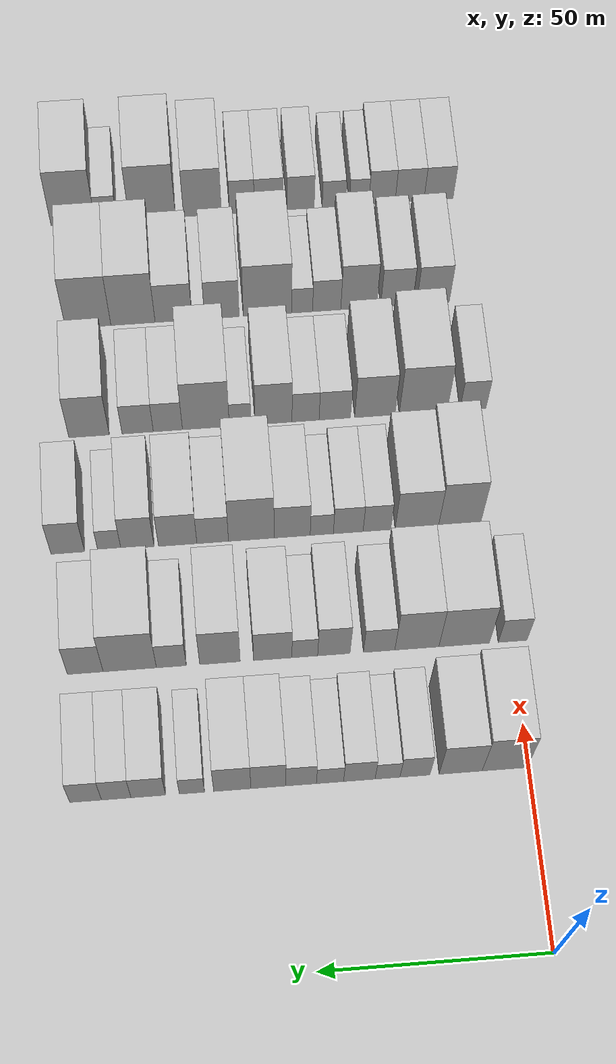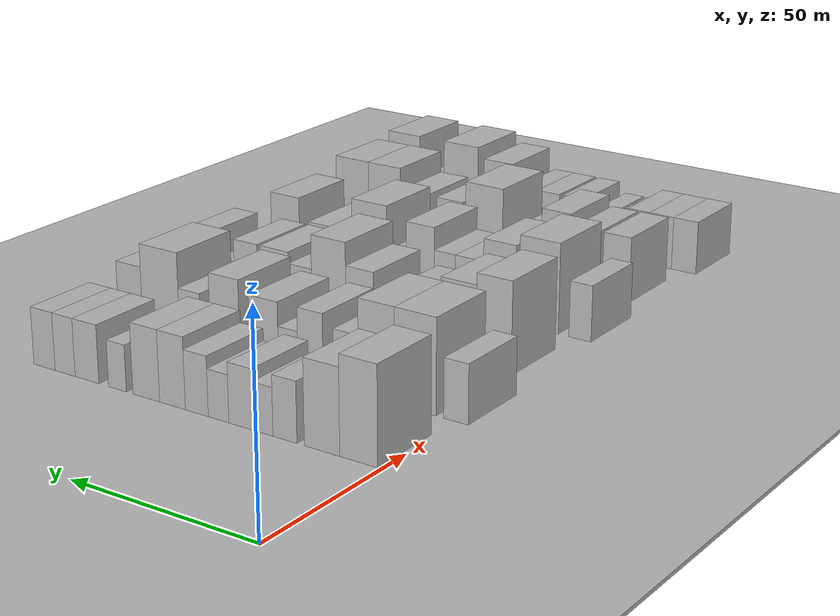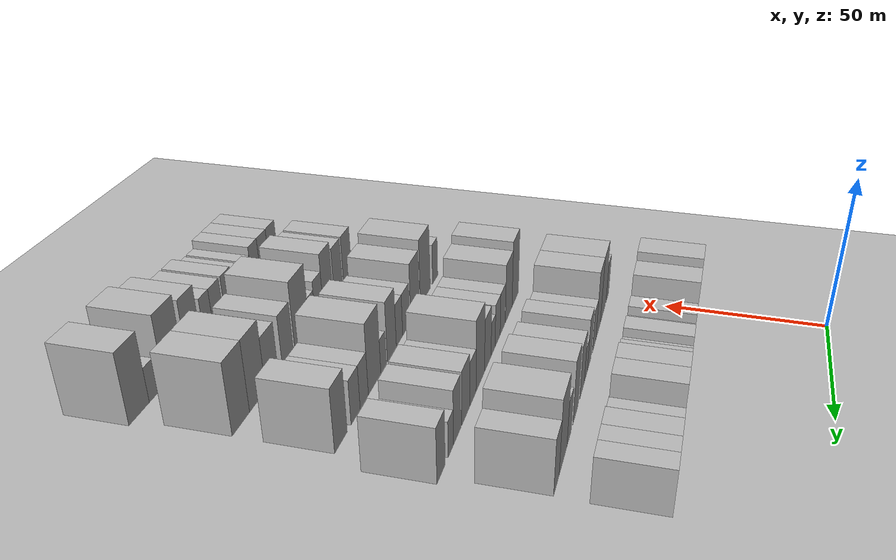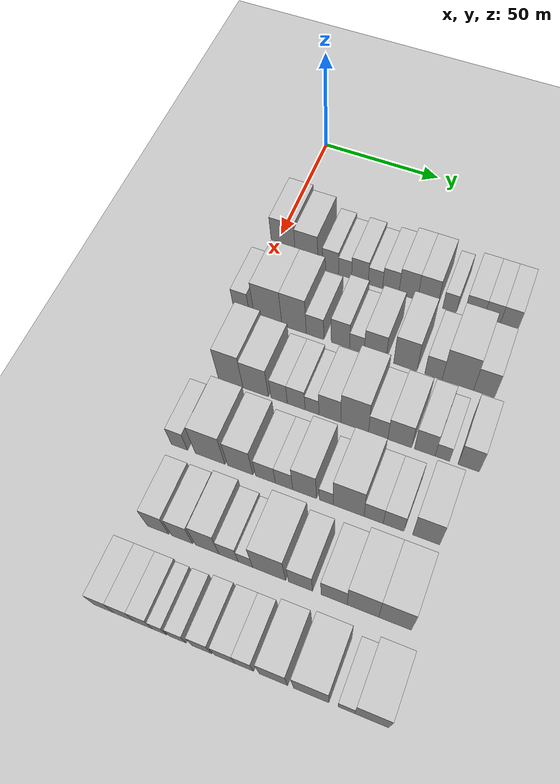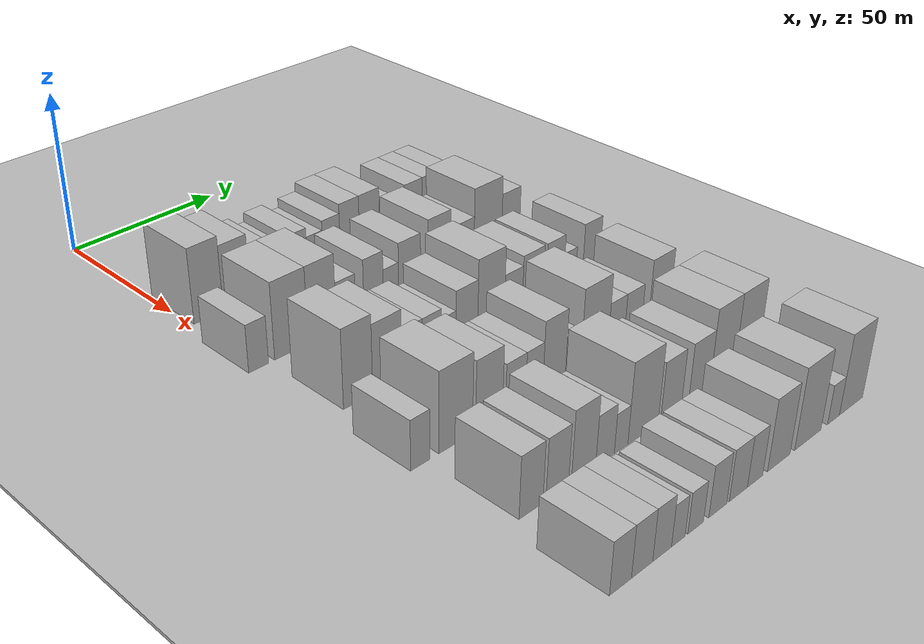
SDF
<sdf version="1.6">
 <world name="default">
  <include><name>ground_plane_1</name><uri>model://HANNAS_ground_plane</uri></include>
  <include>
   <name>ground_plane_2</name>
   <uri>model://HANNAS_ground_plane</uri>
   <pose>100 0 0  0 0 0</pose>
  </include>
  <model name="building_63">
   <static>1</static>
   <pose>50.0000 5.4240 0 0.000000 0.000000 0.000000</pose>
   <link name="link">
    <pose>0 0 12.00 0 0 0</pose>
    <collision name="collision"><geometry><box><size>20.0000 9.8730 24.0000</size></box></geometry></collision>
    <visual name="visual">
     <cast_shadows>0</cast_shadows>
     <geometry><box><size>20.0000 9.8730 24.0000</size></box></geometry>
     <material>
      <script>
       <uri>model://HANNAS_wall/materials/scripts</uri>
       <uri>model://HANNAS_wall/materials/textures</uri>
       <name>vrc/HANNAS_wall</name>
      </script>
     </material>
    </visual>
   </link>
  </model>
  <model name="building_64">
   <static>1</static>
   <pose>50.0000 15.0725 0 0.000000 0.000000 0.000000</pose>
   <link name="link">
    <pose>0 0 10.50 0 0 0</pose>
    <collision name="collision"><geometry><box><size>20.0000 9.4239 21.0000</size></box></geometry></collision>
    <visual name="visual">
     <cast_shadows>0</cast_shadows>
     <geometry><box><size>20.0000 9.4239 21.0000</size></box></geometry>
     <material>
      <script>
       <uri>model://HANNAS_wall/materials/scripts</uri>
       <uri>model://HANNAS_wall/materials/textures</uri>
       <name>vrc/HANNAS_wall</name>
      </script>
     </material>
    </visual>
   </link>
  </model>
  <model name="building_65">
   <static>1</static>
   <pose>50.0000 25.0667 0 0.000000 0.000000 0.000000</pose>
   <link name="link">
    <pose>0 0 7.50 0 0 0</pose>
    <collision name="collision"><geometry><box><size>20.0000 6.5646 15.0000</size></box></geometry></collision>
    <visual name="visual">
     <cast_shadows>0</cast_shadows>
     <geometry><box><size>20.0000 6.5646 15.0000</size></box></geometry>
     <material>
      <script>
       <uri>model://HANNAS_wall/materials/scripts</uri>
       <uri>model://HANNAS_wall/materials/textures</uri>
       <name>vrc/HANNAS_wall</name>
      </script>
     </material>
    </visual>
   </link>
  </model>
  <model name="building_66">
   <static>1</static>
   <pose>50.0000 31.0688 0 0.000000 0.000000 0.000000</pose>
   <link name="link">
    <pose>0 0 6.00 0 0 0</pose>
    <collision name="collision"><geometry><box><size>20.0000 5.4398 12.0000</size></box></geometry></collision>
    <visual name="visual">
     <cast_shadows>0</cast_shadows>
     <geometry><box><size>20.0000 5.4398 12.0000</size></box></geometry>
     <material>
      <script>
       <uri>model://HANNAS_wall/materials/scripts</uri>
       <uri>model://HANNAS_wall/materials/textures</uri>
       <name>vrc/HANNAS_wall</name>
      </script>
     </material>
    </visual>
   </link>
  </model>
  <model name="building_67">
   <static>1</static>
   <pose>50.0000 37.2341 0 0.000000 0.000000 0.000000</pose>
   <link name="link">
    <pose>0 0 7.50 0 0 0</pose>
    <collision name="collision"><geometry><box><size>20.0000 6.8907 15.0000</size></box></geometry></collision>
    <visual name="visual">
     <cast_shadows>0</cast_shadows>
     <geometry><box><size>20.0000 6.8907 15.0000</size></box></geometry>
     <material>
      <script>
       <uri>model://HANNAS_wall/materials/scripts</uri>
       <uri>model://HANNAS_wall/materials/textures</uri>
       <name>vrc/HANNAS_wall</name>
      </script>
     </material>
    </visual>
   </link>
  </model>
  <model name="building_68">
   <static>1</static>
   <pose>50.0000 43.6333 0 0.000000 0.000000 0.000000</pose>
   <link name="link">
    <pose>0 0 6.00 0 0 0</pose>
    <collision name="collision"><geometry><box><size>20.0000 5.9078 12.0000</size></box></geometry></collision>
    <visual name="visual">
     <cast_shadows>0</cast_shadows>
     <geometry><box><size>20.0000 5.9078 12.0000</size></box></geometry>
     <material>
      <script>
       <uri>model://HANNAS_wall/materials/scripts</uri>
       <uri>model://HANNAS_wall/materials/textures</uri>
       <name>vrc/HANNAS_wall</name>
      </script>
     </material>
    </visual>
   </link>
  </model>
  <model name="building_69">
   <static>1</static>
   <pose>50.0000 49.9185 0 0.000000 0.000000 0.000000</pose>
   <link name="link">
    <pose>0 0 7.50 0 0 0</pose>
    <collision name="collision"><geometry><box><size>20.0000 6.6625 15.0000</size></box></geometry></collision>
    <visual name="visual">
     <cast_shadows>0</cast_shadows>
     <geometry><box><size>20.0000 6.6625 15.0000</size></box></geometry>
     <material>
      <script>
       <uri>model://HANNAS_wall/materials/scripts</uri>
       <uri>model://HANNAS_wall/materials/textures</uri>
       <name>vrc/HANNAS_wall</name>
      </script>
     </material>
    </visual>
   </link>
  </model>
  <model name="building_70">
   <static>1</static>
   <pose>50.0000 57.0502 0 0.000000 0.000000 0.000000</pose>
   <link name="link">
    <pose>0 0 9.00 0 0 0</pose>
    <collision name="collision"><geometry><box><size>20.0000 7.6008 18.0000</size></box></geometry></collision>
    <visual name="visual">
     <cast_shadows>0</cast_shadows>
     <geometry><box><size>20.0000 7.6008 18.0000</size></box></geometry>
     <material>
      <script>
       <uri>model://HANNAS_wall/materials/scripts</uri>
       <uri>model://HANNAS_wall/materials/textures</uri>
       <name>vrc/HANNAS_wall</name>
      </script>
     </material>
    </visual>
   </link>
  </model>
  <model name="building_71">
   <static>1</static>
   <pose>50.0000 64.8826 0 0.000000 0.000000 0.000000</pose>
   <link name="link">
    <pose>0 0 9.00 0 0 0</pose>
    <collision name="collision"><geometry><box><size>20.0000 8.0640 18.0000</size></box></geometry></collision>
    <visual name="visual">
     <cast_shadows>0</cast_shadows>
     <geometry><box><size>20.0000 8.0640 18.0000</size></box></geometry>
     <material>
      <script>
       <uri>model://HANNAS_wall/materials/scripts</uri>
       <uri>model://HANNAS_wall/materials/textures</uri>
       <name>vrc/HANNAS_wall</name>
      </script>
     </material>
    </visual>
   </link>
  </model>
  <model name="building_72">
   <static>1</static>
   <pose>50.0000 73.6404 0 0.000000 0.000000 0.000000</pose>
   <link name="link">
    <pose>0 0 6.00 0 0 0</pose>
    <collision name="collision"><geometry><box><size>20.0000 5.4518 12.0000</size></box></geometry></collision>
    <visual name="visual">
     <cast_shadows>0</cast_shadows>
     <geometry><box><size>20.0000 5.4518 12.0000</size></box></geometry>
     <material>
      <script>
       <uri>model://HANNAS_wall/materials/scripts</uri>
       <uri>model://HANNAS_wall/materials/textures</uri>
       <name>vrc/HANNAS_wall</name>
      </script>
     </material>
    </visual>
   </link>
  </model>
  <model name="building_73">
   <static>1</static>
   <pose>50.0000 83.1149 0 0.000000 0.000000 0.000000</pose>
   <link name="link">
    <pose>0 0 7.50 0 0 0</pose>
    <collision name="collision"><geometry><box><size>20.0000 7.4973 15.0000</size></box></geometry></collision>
    <visual name="visual">
     <cast_shadows>0</cast_shadows>
     <geometry><box><size>20.0000 7.4973 15.0000</size></box></geometry>
     <material>
      <script>
       <uri>model://HANNAS_wall/materials/scripts</uri>
       <uri>model://HANNAS_wall/materials/textures</uri>
       <name>vrc/HANNAS_wall</name>
      </script>
     </material>
    </visual>
   </link>
  </model>
  <model name="building_74">
   <static>1</static>
   <pose>50.0000 90.0583 0 0.000000 0.000000 0.000000</pose>
   <link name="link">
    <pose>0 0 7.50 0 0 0</pose>
    <collision name="collision"><geometry><box><size>20.0000 6.3895 15.0000</size></box></geometry></collision>
    <visual name="visual">
     <cast_shadows>0</cast_shadows>
     <geometry><box><size>20.0000 6.3895 15.0000</size></box></geometry>
     <material>
      <script>
       <uri>model://HANNAS_wall/materials/scripts</uri>
       <uri>model://HANNAS_wall/materials/textures</uri>
       <name>vrc/HANNAS_wall</name>
      </script>
     </material>
    </visual>
   </link>
  </model>
  <model name="building_75">
   <static>1</static>
   <pose>50.0000 96.6844 0 0.000000 0.000000 0.000000</pose>
   <link name="link">
    <pose>0 0 7.50 0 0 0</pose>
    <collision name="collision"><geometry><box><size>20.0000 6.8627 15.0000</size></box></geometry></collision>
    <visual name="visual">
     <cast_shadows>0</cast_shadows>
     <geometry><box><size>20.0000 6.8627 15.0000</size></box></geometry>
     <material>
      <script>
       <uri>model://HANNAS_wall/materials/scripts</uri>
       <uri>model://HANNAS_wall/materials/textures</uri>
       <name>vrc/HANNAS_wall</name>
      </script>
     </material>
    </visual>
   </link>
  </model>
  <model name="building_182">
   <static>1</static>
   <pose>79.0000 -0.0189 0 0.000000 0.000000 0.000000</pose>
   <link name="link">
    <pose>0 0 7.50 0 0 0</pose>
    <collision name="collision"><geometry><box><size>20.0000 6.5021 15.0000</size></box></geometry></collision>
    <visual name="visual">
     <cast_shadows>0</cast_shadows>
     <geometry><box><size>20.0000 6.5021 15.0000</size></box></geometry>
     <material>
      <script>
       <uri>model://HANNAS_wall/materials/scripts</uri>
       <uri>model://HANNAS_wall/materials/textures</uri>
       <name>vrc/HANNAS_wall</name>
      </script>
     </material>
    </visual>
   </link>
  </model>
  <model name="building_183">
   <static>1</static>
   <pose>79.0000 10.9046 0 0.000000 0.000000 0.000000</pose>
   <link name="link">
    <pose>0 0 12.00 0 0 0</pose>
    <collision name="collision"><geometry><box><size>20.0000 11.3450 24.0000</size></box></geometry></collision>
    <visual name="visual">
     <cast_shadows>0</cast_shadows>
     <geometry><box><size>20.0000 11.3450 24.0000</size></box></geometry>
     <material>
      <script>
       <uri>model://HANNAS_wall/materials/scripts</uri>
       <uri>model://HANNAS_wall/materials/textures</uri>
       <name>vrc/HANNAS_wall</name>
      </script>
     </material>
    </visual>
   </link>
  </model>
  <model name="building_184">
   <static>1</static>
   <pose>79.0000 21.5373 0 0.000000 0.000000 0.000000</pose>
   <link name="link">
    <pose>0 0 12.00 0 0 0</pose>
    <collision name="collision"><geometry><box><size>20.0000 9.9205 24.0000</size></box></geometry></collision>
    <visual name="visual">
     <cast_shadows>0</cast_shadows>
     <geometry><box><size>20.0000 9.9205 24.0000</size></box></geometry>
     <material>
      <script>
       <uri>model://HANNAS_wall/materials/scripts</uri>
       <uri>model://HANNAS_wall/materials/textures</uri>
       <name>vrc/HANNAS_wall</name>
      </script>
     </material>
    </visual>
   </link>
  </model>
  <model name="building_185">
   <static>1</static>
   <pose>79.0000 30.0246 0 0.000000 0.000000 0.000000</pose>
   <link name="link">
    <pose>0 0 7.50 0 0 0</pose>
    <collision name="collision"><geometry><box><size>20.0000 7.0541 15.0000</size></box></geometry></collision>
    <visual name="visual">
     <cast_shadows>0</cast_shadows>
     <geometry><box><size>20.0000 7.0541 15.0000</size></box></geometry>
     <material>
      <script>
       <uri>model://HANNAS_wall/materials/scripts</uri>
       <uri>model://HANNAS_wall/materials/textures</uri>
       <name>vrc/HANNAS_wall</name>
      </script>
     </material>
    </visual>
   </link>
  </model>
  <model name="building_186">
   <static>1</static>
   <pose>79.0000 40.1799 0 0.000000 0.000000 0.000000</pose>
   <link name="link">
    <pose>0 0 9.00 0 0 0</pose>
    <collision name="collision"><geometry><box><size>20.0000 7.2566 18.0000</size></box></geometry></collision>
    <visual name="visual">
     <cast_shadows>0</cast_shadows>
     <geometry><box><size>20.0000 7.2566 18.0000</size></box></geometry>
     <material>
      <script>
       <uri>model://HANNAS_wall/materials/scripts</uri>
       <uri>model://HANNAS_wall/materials/textures</uri>
       <name>vrc/HANNAS_wall</name>
      </script>
     </material>
    </visual>
   </link>
  </model>
  <model name="building_187">
   <static>1</static>
   <pose>79.0000 46.6966 0 0.000000 0.000000 0.000000</pose>
   <link name="link">
    <pose>0 0 6.00 0 0 0</pose>
    <collision name="collision"><geometry><box><size>20.0000 5.7768 12.0000</size></box></geometry></collision>
    <visual name="visual">
     <cast_shadows>0</cast_shadows>
     <geometry><box><size>20.0000 5.7768 12.0000</size></box></geometry>
     <material>
      <script>
       <uri>model://HANNAS_wall/materials/scripts</uri>
       <uri>model://HANNAS_wall/materials/textures</uri>
       <name>vrc/HANNAS_wall</name>
      </script>
     </material>
    </visual>
   </link>
  </model>
  <model name="building_188">
   <static>1</static>
   <pose>79.0000 53.8632 0 0.000000 0.000000 0.000000</pose>
   <link name="link">
    <pose>0 0 9.00 0 0 0</pose>
    <collision name="collision"><geometry><box><size>20.0000 8.5563 18.0000</size></box></geometry></collision>
    <visual name="visual">
     <cast_shadows>0</cast_shadows>
     <geometry><box><size>20.0000 8.5563 18.0000</size></box></geometry>
     <material>
      <script>
       <uri>model://HANNAS_wall/materials/scripts</uri>
       <uri>model://HANNAS_wall/materials/textures</uri>
       <name>vrc/HANNAS_wall</name>
      </script>
     </material>
    </visual>
   </link>
  </model>
  <model name="building_189">
   <static>1</static>
   <pose>79.0000 65.6581 0 0.000000 0.000000 0.000000</pose>
   <link name="link">
    <pose>0 0 10.50 0 0 0</pose>
    <collision name="collision"><geometry><box><size>20.0000 9.0336 21.0000</size></box></geometry></collision>
    <visual name="visual">
     <cast_shadows>0</cast_shadows>
     <geometry><box><size>20.0000 9.0336 21.0000</size></box></geometry>
     <material>
      <script>
       <uri>model://HANNAS_wall/materials/scripts</uri>
       <uri>model://HANNAS_wall/materials/textures</uri>
       <name>vrc/HANNAS_wall</name>
      </script>
     </material>
    </visual>
   </link>
  </model>
  <model name="building_190">
   <static>1</static>
   <pose>79.0000 76.5094 0 0.000000 0.000000 0.000000</pose>
   <link name="link">
    <pose>0 0 7.50 0 0 0</pose>
    <collision name="collision"><geometry><box><size>20.0000 6.6690 15.0000</size></box></geometry></collision>
    <visual name="visual">
     <cast_shadows>0</cast_shadows>
     <geometry><box><size>20.0000 6.6690 15.0000</size></box></geometry>
     <material>
      <script>
       <uri>model://HANNAS_wall/materials/scripts</uri>
       <uri>model://HANNAS_wall/materials/textures</uri>
       <name>vrc/HANNAS_wall</name>
      </script>
     </material>
    </visual>
   </link>
  </model>
  <model name="building_191">
   <static>1</static>
   <pose>79.0000 85.7772 0 0.000000 0.000000 0.000000</pose>
   <link name="link">
    <pose>0 0 12.00 0 0 0</pose>
    <collision name="collision"><geometry><box><size>20.0000 11.8665 24.0000</size></box></geometry></collision>
    <visual name="visual">
     <cast_shadows>0</cast_shadows>
     <geometry><box><size>20.0000 11.8665 24.0000</size></box></geometry>
     <material>
      <script>
       <uri>model://HANNAS_wall/materials/scripts</uri>
       <uri>model://HANNAS_wall/materials/textures</uri>
       <name>vrc/HANNAS_wall</name>
      </script>
     </material>
    </visual>
   </link>
  </model>
  <model name="building_192">
   <static>1</static>
   <pose>79.0000 95.6790 0 0.000000 0.000000 0.000000</pose>
   <link name="link">
    <pose>0 0 9.00 0 0 0</pose>
    <collision name="collision"><geometry><box><size>20.0000 7.9371 18.0000</size></box></geometry></collision>
    <visual name="visual">
     <cast_shadows>0</cast_shadows>
     <geometry><box><size>20.0000 7.9371 18.0000</size></box></geometry>
     <material>
      <script>
       <uri>model://HANNAS_wall/materials/scripts</uri>
       <uri>model://HANNAS_wall/materials/textures</uri>
       <name>vrc/HANNAS_wall</name>
      </script>
     </material>
    </visual>
   </link>
  </model>
  <model name="building_292">
   <static>1</static>
   <pose>108.0000 8.5691 0 0.000000 0.000000 0.000000</pose>
   <link name="link">
    <pose>0 0 12.00 0 0 0</pose>
    <collision name="collision"><geometry><box><size>20.0000 9.7496 24.0000</size></box></geometry></collision>
    <visual name="visual">
     <cast_shadows>0</cast_shadows>
     <geometry><box><size>20.0000 9.7496 24.0000</size></box></geometry>
     <material>
      <script>
       <uri>model://HANNAS_wall/materials/scripts</uri>
       <uri>model://HANNAS_wall/materials/textures</uri>
       <name>vrc/HANNAS_wall</name>
      </script>
     </material>
    </visual>
   </link>
  </model>
  <model name="building_293">
   <static>1</static>
   <pose>108.0000 18.4578 0 0.000000 0.000000 0.000000</pose>
   <link name="link">
    <pose>0 0 10.50 0 0 0</pose>
    <collision name="collision"><geometry><box><size>20.0000 10.0279 21.0000</size></box></geometry></collision>
    <visual name="visual">
     <cast_shadows>0</cast_shadows>
     <geometry><box><size>20.0000 10.0279 21.0000</size></box></geometry>
     <material>
      <script>
       <uri>model://HANNAS_wall/materials/scripts</uri>
       <uri>model://HANNAS_wall/materials/textures</uri>
       <name>vrc/HANNAS_wall</name>
      </script>
     </material>
    </visual>
   </link>
  </model>
  <model name="building_294">
   <static>1</static>
   <pose>108.0000 27.6638 0 0.000000 0.000000 0.000000</pose>
   <link name="link">
    <pose>0 0 7.50 0 0 0</pose>
    <collision name="collision"><geometry><box><size>20.0000 6.3840 15.0000</size></box></geometry></collision>
    <visual name="visual">
     <cast_shadows>0</cast_shadows>
     <geometry><box><size>20.0000 6.3840 15.0000</size></box></geometry>
     <material>
      <script>
       <uri>model://HANNAS_wall/materials/scripts</uri>
       <uri>model://HANNAS_wall/materials/textures</uri>
       <name>vrc/HANNAS_wall</name>
      </script>
     </material>
    </visual>
   </link>
  </model>
  <model name="building_295">
   <static>1</static>
   <pose>108.0000 34.2830 0 0.000000 0.000000 0.000000</pose>
   <link name="link">
    <pose>0 0 7.50 0 0 0</pose>
    <collision name="collision"><geometry><box><size>20.0000 6.8545 15.0000</size></box></geometry></collision>
    <visual name="visual">
     <cast_shadows>0</cast_shadows>
     <geometry><box><size>20.0000 6.8545 15.0000</size></box></geometry>
     <material>
      <script>
       <uri>model://HANNAS_wall/materials/scripts</uri>
       <uri>model://HANNAS_wall/materials/textures</uri>
       <name>vrc/HANNAS_wall</name>
      </script>
     </material>
    </visual>
   </link>
  </model>
  <model name="building_296">
   <static>1</static>
   <pose>108.0000 40.3734 0 0.000000 0.000000 0.000000</pose>
   <link name="link">
    <pose>0 0 6.00 0 0 0</pose>
    <collision name="collision"><geometry><box><size>20.0000 5.3262 12.0000</size></box></geometry></collision>
    <visual name="visual">
     <cast_shadows>0</cast_shadows>
     <geometry><box><size>20.0000 5.3262 12.0000</size></box></geometry>
     <material>
      <script>
       <uri>model://HANNAS_wall/materials/scripts</uri>
       <uri>model://HANNAS_wall/materials/textures</uri>
       <name>vrc/HANNAS_wall</name>
      </script>
     </material>
    </visual>
   </link>
  </model>
  <model name="building_297">
   <static>1</static>
   <pose>108.0000 47.1893 0 0.000000 0.000000 0.000000</pose>
   <link name="link">
    <pose>0 0 9.00 0 0 0</pose>
    <collision name="collision"><geometry><box><size>20.0000 8.3055 18.0000</size></box></geometry></collision>
    <visual name="visual">
     <cast_shadows>0</cast_shadows>
     <geometry><box><size>20.0000 8.3055 18.0000</size></box></geometry>
     <material>
      <script>
       <uri>model://HANNAS_wall/materials/scripts</uri>
       <uri>model://HANNAS_wall/materials/textures</uri>
       <name>vrc/HANNAS_wall</name>
      </script>
     </material>
    </visual>
   </link>
  </model>
  <model name="building_298">
   <static>1</static>
   <pose>108.0000 56.5709 0 0.000000 0.000000 0.000000</pose>
   <link name="link">
    <pose>0 0 12.00 0 0 0</pose>
    <collision name="collision"><geometry><box><size>20.0000 10.4578 24.0000</size></box></geometry></collision>
    <visual name="visual">
     <cast_shadows>0</cast_shadows>
     <geometry><box><size>20.0000 10.4578 24.0000</size></box></geometry>
     <material>
      <script>
       <uri>model://HANNAS_wall/materials/scripts</uri>
       <uri>model://HANNAS_wall/materials/textures</uri>
       <name>vrc/HANNAS_wall</name>
      </script>
     </material>
    </visual>
   </link>
  </model>
  <model name="building_299">
   <static>1</static>
   <pose>108.0000 65.4216 0 0.000000 0.000000 0.000000</pose>
   <link name="link">
    <pose>0 0 7.50 0 0 0</pose>
    <collision name="collision"><geometry><box><size>20.0000 7.2435 15.0000</size></box></geometry></collision>
    <visual name="visual">
     <cast_shadows>0</cast_shadows>
     <geometry><box><size>20.0000 7.2435 15.0000</size></box></geometry>
     <material>
      <script>
       <uri>model://HANNAS_wall/materials/scripts</uri>
       <uri>model://HANNAS_wall/materials/textures</uri>
       <name>vrc/HANNAS_wall</name>
      </script>
     </material>
    </visual>
   </link>
  </model>
  <model name="building_300">
   <static>1</static>
   <pose>108.0000 73.4428 0 0.000000 0.000000 0.000000</pose>
   <link name="link">
    <pose>0 0 9.00 0 0 0</pose>
    <collision name="collision"><geometry><box><size>20.0000 8.7989 18.0000</size></box></geometry></collision>
    <visual name="visual">
     <cast_shadows>0</cast_shadows>
     <geometry><box><size>20.0000 8.7989 18.0000</size></box></geometry>
     <material>
      <script>
       <uri>model://HANNAS_wall/materials/scripts</uri>
       <uri>model://HANNAS_wall/materials/textures</uri>
       <name>vrc/HANNAS_wall</name>
      </script>
     </material>
    </visual>
   </link>
  </model>
  <model name="building_301">
   <static>1</static>
   <pose>108.0000 82.6380 0 0.000000 0.000000 0.000000</pose>
   <link name="link">
    <pose>0 0 9.00 0 0 0</pose>
    <collision name="collision"><geometry><box><size>20.0000 7.5915 18.0000</size></box></geometry></collision>
    <visual name="visual">
     <cast_shadows>0</cast_shadows>
     <geometry><box><size>20.0000 7.5915 18.0000</size></box></geometry>
     <material>
      <script>
       <uri>model://HANNAS_wall/materials/scripts</uri>
       <uri>model://HANNAS_wall/materials/textures</uri>
       <name>vrc/HANNAS_wall</name>
      </script>
     </material>
    </visual>
   </link>
  </model>
  <model name="building_302">
   <static>1</static>
   <pose>108.0000 89.0787 0 0.000000 0.000000 0.000000</pose>
   <link name="link">
    <pose>0 0 6.00 0 0 0</pose>
    <collision name="collision"><geometry><box><size>20.0000 5.2900 12.0000</size></box></geometry></collision>
    <visual name="visual">
     <cast_shadows>0</cast_shadows>
     <geometry><box><size>20.0000 5.2900 12.0000</size></box></geometry>
     <material>
      <script>
       <uri>model://HANNAS_wall/materials/scripts</uri>
       <uri>model://HANNAS_wall/materials/textures</uri>
       <name>vrc/HANNAS_wall</name>
      </script>
     </material>
    </visual>
   </link>
  </model>
  <model name="building_303">
   <static>1</static>
   <pose>108.0000 98.5750 0 0.000000 0.000000 0.000000</pose>
   <link name="link">
    <pose>0 0 9.00 0 0 0</pose>
    <collision name="collision"><geometry><box><size>20.0000 7.7025 18.0000</size></box></geometry></collision>
    <visual name="visual">
     <cast_shadows>0</cast_shadows>
     <geometry><box><size>20.0000 7.7025 18.0000</size></box></geometry>
     <material>
      <script>
       <uri>model://HANNAS_wall/materials/scripts</uri>
       <uri>model://HANNAS_wall/materials/textures</uri>
       <name>vrc/HANNAS_wall</name>
      </script>
     </material>
    </visual>
   </link>
  </model>
  <model name="building_406">
   <static>1</static>
   <pose>137.0000 2.0412 0 0.000000 0.000000 0.000000</pose>
   <link name="link">
    <pose>0 0 7.50 0 0 0</pose>
    <collision name="collision"><geometry><box><size>20.0000 6.2198 15.0000</size></box></geometry></collision>
    <visual name="visual">
     <cast_shadows>0</cast_shadows>
     <geometry><box><size>20.0000 6.2198 15.0000</size></box></geometry>
     <material>
      <script>
       <uri>model://HANNAS_wall/materials/scripts</uri>
       <uri>model://HANNAS_wall/materials/textures</uri>
       <name>vrc/HANNAS_wall</name>
      </script>
     </material>
    </visual>
   </link>
  </model>
  <model name="building_407">
   <static>1</static>
   <pose>137.0000 13.8384 0 0.000000 0.000000 0.000000</pose>
   <link name="link">
    <pose>0 0 12.00 0 0 0</pose>
    <collision name="collision"><geometry><box><size>20.0000 11.3745 24.0000</size></box></geometry></collision>
    <visual name="visual">
     <cast_shadows>0</cast_shadows>
     <geometry><box><size>20.0000 11.3745 24.0000</size></box></geometry>
     <material>
      <script>
       <uri>model://HANNAS_wall/materials/scripts</uri>
       <uri>model://HANNAS_wall/materials/textures</uri>
       <name>vrc/HANNAS_wall</name>
      </script>
     </material>
    </visual>
   </link>
  </model>
  <model name="building_408">
   <static>1</static>
   <pose>137.0000 25.2977 0 0.000000 0.000000 0.000000</pose>
   <link name="link">
    <pose>0 0 10.50 0 0 0</pose>
    <collision name="collision"><geometry><box><size>20.0000 9.5443 21.0000</size></box></geometry></collision>
    <visual name="visual">
     <cast_shadows>0</cast_shadows>
     <geometry><box><size>20.0000 9.5443 21.0000</size></box></geometry>
     <material>
      <script>
       <uri>model://HANNAS_wall/materials/scripts</uri>
       <uri>model://HANNAS_wall/materials/textures</uri>
       <name>vrc/HANNAS_wall</name>
      </script>
     </material>
    </visual>
   </link>
  </model>
  <model name="building_409">
   <static>1</static>
   <pose>137.0000 34.7745 0 0.000000 0.000000 0.000000</pose>
   <link name="link">
    <pose>0 0 7.50 0 0 0</pose>
    <collision name="collision"><geometry><box><size>20.0000 7.4093 15.0000</size></box></geometry></collision>
    <visual name="visual">
     <cast_shadows>0</cast_shadows>
     <geometry><box><size>20.0000 7.4093 15.0000</size></box></geometry>
     <material>
      <script>
       <uri>model://HANNAS_wall/materials/scripts</uri>
       <uri>model://HANNAS_wall/materials/textures</uri>
       <name>vrc/HANNAS_wall</name>
      </script>
     </material>
    </visual>
   </link>
  </model>
  <model name="building_410">
   <static>1</static>
   <pose>137.0000 41.6864 0 0.000000 0.000000 0.000000</pose>
   <link name="link">
    <pose>0 0 7.50 0 0 0</pose>
    <collision name="collision"><geometry><box><size>20.0000 6.4144 15.0000</size></box></geometry></collision>
    <visual name="visual">
     <cast_shadows>0</cast_shadows>
     <geometry><box><size>20.0000 6.4144 15.0000</size></box></geometry>
     <material>
      <script>
       <uri>model://HANNAS_wall/materials/scripts</uri>
       <uri>model://HANNAS_wall/materials/textures</uri>
       <name>vrc/HANNAS_wall</name>
      </script>
     </material>
    </visual>
   </link>
  </model>
  <model name="building_411">
   <static>1</static>
   <pose>137.0000 49.2316 0 0.000000 0.000000 0.000000</pose>
   <link name="link">
    <pose>0 0 10.50 0 0 0</pose>
    <collision name="collision"><geometry><box><size>20.0000 8.6761 21.0000</size></box></geometry></collision>
    <visual name="visual">
     <cast_shadows>0</cast_shadows>
     <geometry><box><size>20.0000 8.6761 21.0000</size></box></geometry>
     <material>
      <script>
       <uri>model://HANNAS_wall/materials/scripts</uri>
       <uri>model://HANNAS_wall/materials/textures</uri>
       <name>vrc/HANNAS_wall</name>
      </script>
     </material>
    </visual>
   </link>
  </model>
  <model name="building_412">
   <static>1</static>
   <pose>137.0000 57.1134 0 0.000000 0.000000 0.000000</pose>
   <link name="link">
    <pose>0 0 6.00 0 0 0</pose>
    <collision name="collision"><geometry><box><size>20.0000 5.0875 12.0000</size></box></geometry></collision>
    <visual name="visual">
     <cast_shadows>0</cast_shadows>
     <geometry><box><size>20.0000 5.0875 12.0000</size></box></geometry>
     <material>
      <script>
       <uri>model://HANNAS_wall/materials/scripts</uri>
       <uri>model://HANNAS_wall/materials/textures</uri>
       <name>vrc/HANNAS_wall</name>
      </script>
     </material>
    </visual>
   </link>
  </model>
  <model name="building_413">
   <static>1</static>
   <pose>137.0000 65.1721 0 0.000000 0.000000 0.000000</pose>
   <link name="link">
    <pose>0 0 12.00 0 0 0</pose>
    <collision name="collision"><geometry><box><size>20.0000 11.0300 24.0000</size></box></geometry></collision>
    <visual name="visual">
     <cast_shadows>0</cast_shadows>
     <geometry><box><size>20.0000 11.0300 24.0000</size></box></geometry>
     <material>
      <script>
       <uri>model://HANNAS_wall/materials/scripts</uri>
       <uri>model://HANNAS_wall/materials/textures</uri>
       <name>vrc/HANNAS_wall</name>
      </script>
     </material>
    </visual>
   </link>
  </model>
  <model name="building_414">
   <static>1</static>
   <pose>137.0000 74.1191 0 0.000000 0.000000 0.000000</pose>
   <link name="link">
    <pose>0 0 7.50 0 0 0</pose>
    <collision name="collision"><geometry><box><size>20.0000 6.8639 15.0000</size></box></geometry></collision>
    <visual name="visual">
     <cast_shadows>0</cast_shadows>
     <geometry><box><size>20.0000 6.8639 15.0000</size></box></geometry>
     <material>
      <script>
       <uri>model://HANNAS_wall/materials/scripts</uri>
       <uri>model://HANNAS_wall/materials/textures</uri>
       <name>vrc/HANNAS_wall</name>
      </script>
     </material>
    </visual>
   </link>
  </model>
  <model name="building_415">
   <static>1</static>
   <pose>137.0000 81.2188 0 0.000000 0.000000 0.000000</pose>
   <link name="link">
    <pose>0 0 7.50 0 0 0</pose>
    <collision name="collision"><geometry><box><size>20.0000 7.3355 15.0000</size></box></geometry></collision>
    <visual name="visual">
     <cast_shadows>0</cast_shadows>
     <geometry><box><size>20.0000 7.3355 15.0000</size></box></geometry>
     <material>
      <script>
       <uri>model://HANNAS_wall/materials/scripts</uri>
       <uri>model://HANNAS_wall/materials/textures</uri>
       <name>vrc/HANNAS_wall</name>
      </script>
     </material>
    </visual>
   </link>
  </model>
  <model name="building_416">
   <static>1</static>
   <pose>137.0000 92.6195 0 0.000000 0.000000 0.000000</pose>
   <link name="link">
    <pose>0 0 10.50 0 0 0</pose>
    <collision name="collision"><geometry><box><size>20.0000 9.4659 21.0000</size></box></geometry></collision>
    <visual name="visual">
     <cast_shadows>0</cast_shadows>
     <geometry><box><size>20.0000 9.4659 21.0000</size></box></geometry>
     <material>
      <script>
       <uri>model://HANNAS_wall/materials/scripts</uri>
       <uri>model://HANNAS_wall/materials/textures</uri>
       <name>vrc/HANNAS_wall</name>
      </script>
     </material>
    </visual>
   </link>
  </model>
  <model name="building_517">
   <static>1</static>
   <pose>166.0000 8.3237 0 0.000000 0.000000 0.000000</pose>
   <link name="link">
    <pose>0 0 9.00 0 0 0</pose>
    <collision name="collision"><geometry><box><size>20.0000 7.9466 18.0000</size></box></geometry></collision>
    <visual name="visual">
     <cast_shadows>0</cast_shadows>
     <geometry><box><size>20.0000 7.9466 18.0000</size></box></geometry>
     <material>
      <script>
       <uri>model://HANNAS_wall/materials/scripts</uri>
       <uri>model://HANNAS_wall/materials/textures</uri>
       <name>vrc/HANNAS_wall</name>
      </script>
     </material>
    </visual>
   </link>
  </model>
  <model name="building_518">
   <static>1</static>
   <pose>166.0000 17.1709 0 0.000000 0.000000 0.000000</pose>
   <link name="link">
    <pose>0 0 9.00 0 0 0</pose>
    <collision name="collision"><geometry><box><size>20.0000 7.7476 18.0000</size></box></geometry></collision>
    <visual name="visual">
     <cast_shadows>0</cast_shadows>
     <geometry><box><size>20.0000 7.7476 18.0000</size></box></geometry>
     <material>
      <script>
       <uri>model://HANNAS_wall/materials/scripts</uri>
       <uri>model://HANNAS_wall/materials/textures</uri>
       <name>vrc/HANNAS_wall</name>
      </script>
     </material>
    </visual>
   </link>
  </model>
  <model name="building_519">
   <static>1</static>
   <pose>166.0000 26.3846 0 0.000000 0.000000 0.000000</pose>
   <link name="link">
    <pose>0 0 10.50 0 0 0</pose>
    <collision name="collision"><geometry><box><size>20.0000 8.6798 21.0000</size></box></geometry></collision>
    <visual name="visual">
     <cast_shadows>0</cast_shadows>
     <geometry><box><size>20.0000 8.6798 21.0000</size></box></geometry>
     <material>
      <script>
       <uri>model://HANNAS_wall/materials/scripts</uri>
       <uri>model://HANNAS_wall/materials/textures</uri>
       <name>vrc/HANNAS_wall</name>
      </script>
     </material>
    </visual>
   </link>
  </model>
  <model name="building_520">
   <static>1</static>
   <pose>166.0000 34.1407 0 0.000000 0.000000 0.000000</pose>
   <link name="link">
    <pose>0 0 7.50 0 0 0</pose>
    <collision name="collision"><geometry><box><size>20.0000 6.8325 15.0000</size></box></geometry></collision>
    <visual name="visual">
     <cast_shadows>0</cast_shadows>
     <geometry><box><size>20.0000 6.8325 15.0000</size></box></geometry>
     <material>
      <script>
       <uri>model://HANNAS_wall/materials/scripts</uri>
       <uri>model://HANNAS_wall/materials/textures</uri>
       <name>vrc/HANNAS_wall</name>
      </script>
     </material>
    </visual>
   </link>
  </model>
  <model name="building_521">
   <static>1</static>
   <pose>166.0000 40.1042 0 0.000000 0.000000 0.000000</pose>
   <link name="link">
    <pose>0 0 6.00 0 0 0</pose>
    <collision name="collision"><geometry><box><size>20.0000 5.0944 12.0000</size></box></geometry></collision>
    <visual name="visual">
     <cast_shadows>0</cast_shadows>
     <geometry><box><size>20.0000 5.0944 12.0000</size></box></geometry>
     <material>
      <script>
       <uri>model://HANNAS_wall/materials/scripts</uri>
       <uri>model://HANNAS_wall/materials/textures</uri>
       <name>vrc/HANNAS_wall</name>
      </script>
     </material>
    </visual>
   </link>
  </model>
  <model name="building_522">
   <static>1</static>
   <pose>166.0000 48.4905 0 0.000000 0.000000 0.000000</pose>
   <link name="link">
    <pose>0 0 12.00 0 0 0</pose>
    <collision name="collision"><geometry><box><size>20.0000 11.6781 24.0000</size></box></geometry></collision>
    <visual name="visual">
     <cast_shadows>0</cast_shadows>
     <geometry><box><size>20.0000 11.6781 24.0000</size></box></geometry>
     <material>
      <script>
       <uri>model://HANNAS_wall/materials/scripts</uri>
       <uri>model://HANNAS_wall/materials/textures</uri>
       <name>vrc/HANNAS_wall</name>
      </script>
     </material>
    </visual>
   </link>
  </model>
  <model name="building_523">
   <static>1</static>
   <pose>166.0000 59.5021 0 0.000000 0.000000 0.000000</pose>
   <link name="link">
    <pose>0 0 9.00 0 0 0</pose>
    <collision name="collision"><geometry><box><size>20.0000 8.3451 18.0000</size></box></geometry></collision>
    <visual name="visual">
     <cast_shadows>0</cast_shadows>
     <geometry><box><size>20.0000 8.3451 18.0000</size></box></geometry>
     <material>
      <script>
       <uri>model://HANNAS_wall/materials/scripts</uri>
       <uri>model://HANNAS_wall/materials/textures</uri>
       <name>vrc/HANNAS_wall</name>
      </script>
     </material>
    </visual>
   </link>
  </model>
  <model name="building_524">
   <static>1</static>
   <pose>166.0000 71.1414 0 0.000000 0.000000 0.000000</pose>
   <link name="link">
    <pose>0 0 9.00 0 0 0</pose>
    <collision name="collision"><geometry><box><size>20.0000 8.9335 18.0000</size></box></geometry></collision>
    <visual name="visual">
     <cast_shadows>0</cast_shadows>
     <geometry><box><size>20.0000 8.9335 18.0000</size></box></geometry>
     <material>
      <script>
       <uri>model://HANNAS_wall/materials/scripts</uri>
       <uri>model://HANNAS_wall/materials/textures</uri>
       <name>vrc/HANNAS_wall</name>
      </script>
     </material>
    </visual>
   </link>
  </model>
  <model name="building_525">
   <static>1</static>
   <pose>166.0000 80.9367 0 0.000000 0.000000 0.000000</pose>
   <link name="link">
    <pose>0 0 12.00 0 0 0</pose>
    <collision name="collision"><geometry><box><size>20.0000 10.6570 24.0000</size></box></geometry></collision>
    <visual name="visual">
     <cast_shadows>0</cast_shadows>
     <geometry><box><size>20.0000 10.6570 24.0000</size></box></geometry>
     <material>
      <script>
       <uri>model://HANNAS_wall/materials/scripts</uri>
       <uri>model://HANNAS_wall/materials/textures</uri>
       <name>vrc/HANNAS_wall</name>
      </script>
     </material>
    </visual>
   </link>
  </model>
  <model name="building_526">
   <static>1</static>
   <pose>166.0000 91.7235 0 0.000000 0.000000 0.000000</pose>
   <link name="link">
    <pose>0 0 12.00 0 0 0</pose>
    <collision name="collision"><geometry><box><size>20.0000 10.9167 24.0000</size></box></geometry></collision>
    <visual name="visual">
     <cast_shadows>0</cast_shadows>
     <geometry><box><size>20.0000 10.9167 24.0000</size></box></geometry>
     <material>
      <script>
       <uri>model://HANNAS_wall/materials/scripts</uri>
       <uri>model://HANNAS_wall/materials/textures</uri>
       <name>vrc/HANNAS_wall</name>
      </script>
     </material>
    </visual>
   </link>
  </model>
  <model name="building_635">
   <static>1</static>
   <pose>195.0000 3.7397 0 0.000000 0.000000 0.000000</pose>
   <link name="link">
    <pose>0 0 7.50 0 0 0</pose>
    <collision name="collision"><geometry><box><size>20.0000 7.2478 15.0000</size></box></geometry></collision>
    <visual name="visual">
     <cast_shadows>0</cast_shadows>
     <geometry><box><size>20.0000 7.2478 15.0000</size></box></geometry>
     <material>
      <script>
       <uri>model://HANNAS_wall/materials/scripts</uri>
       <uri>model://HANNAS_wall/materials/textures</uri>
       <name>vrc/HANNAS_wall</name>
      </script>
     </material>
    </visual>
   </link>
  </model>
  <model name="building_636">
   <static>1</static>
   <pose>195.0000 10.9611 0 0.000000 0.000000 0.000000</pose>
   <link name="link">
    <pose>0 0 7.50 0 0 0</pose>
    <collision name="collision"><geometry><box><size>20.0000 7.1951 15.0000</size></box></geometry></collision>
    <visual name="visual">
     <cast_shadows>0</cast_shadows>
     <geometry><box><size>20.0000 7.1951 15.0000</size></box></geometry>
     <material>
      <script>
       <uri>model://HANNAS_wall/materials/scripts</uri>
       <uri>model://HANNAS_wall/materials/textures</uri>
       <name>vrc/HANNAS_wall</name>
      </script>
     </material>
    </visual>
   </link>
  </model>
  <model name="building_637">
   <static>1</static>
   <pose>195.0000 17.8413 0 0.000000 0.000000 0.000000</pose>
   <link name="link">
    <pose>0 0 7.50 0 0 0</pose>
    <collision name="collision"><geometry><box><size>20.0000 6.5651 15.0000</size></box></geometry></collision>
    <visual name="visual">
     <cast_shadows>0</cast_shadows>
     <geometry><box><size>20.0000 6.5651 15.0000</size></box></geometry>
     <material>
      <script>
       <uri>model://HANNAS_wall/materials/scripts</uri>
       <uri>model://HANNAS_wall/materials/textures</uri>
       <name>vrc/HANNAS_wall</name>
      </script>
     </material>
    </visual>
   </link>
  </model>
  <model name="building_638">
   <static>1</static>
   <pose>195.0000 23.5432 0 0.000000 0.000000 0.000000</pose>
   <link name="link">
    <pose>0 0 6.00 0 0 0</pose>
    <collision name="collision"><geometry><box><size>20.0000 4.8387 12.0000</size></box></geometry></collision>
    <visual name="visual">
     <cast_shadows>0</cast_shadows>
     <geometry><box><size>20.0000 4.8387 12.0000</size></box></geometry>
     <material>
      <script>
       <uri>model://HANNAS_wall/materials/scripts</uri>
       <uri>model://HANNAS_wall/materials/textures</uri>
       <name>vrc/HANNAS_wall</name>
      </script>
     </material>
    </visual>
   </link>
  </model>
  <model name="building_639">
   <static>1</static>
   <pose>195.0000 29.8294 0 0.000000 0.000000 0.000000</pose>
   <link name="link">
    <pose>0 0 6.00 0 0 0</pose>
    <collision name="collision"><geometry><box><size>20.0000 5.7336 12.0000</size></box></geometry></collision>
    <visual name="visual">
     <cast_shadows>0</cast_shadows>
     <geometry><box><size>20.0000 5.7336 12.0000</size></box></geometry>
     <material>
      <script>
       <uri>model://HANNAS_wall/materials/scripts</uri>
       <uri>model://HANNAS_wall/materials/textures</uri>
       <name>vrc/HANNAS_wall</name>
      </script>
     </material>
    </visual>
   </link>
  </model>
  <model name="building_640">
   <static>1</static>
   <pose>195.0000 38.0736 0 0.000000 0.000000 0.000000</pose>
   <link name="link">
    <pose>0 0 7.50 0 0 0</pose>
    <collision name="collision"><geometry><box><size>20.0000 6.7547 15.0000</size></box></geometry></collision>
    <visual name="visual">
     <cast_shadows>0</cast_shadows>
     <geometry><box><size>20.0000 6.7547 15.0000</size></box></geometry>
     <material>
      <script>
       <uri>model://HANNAS_wall/materials/scripts</uri>
       <uri>model://HANNAS_wall/materials/textures</uri>
       <name>vrc/HANNAS_wall</name>
      </script>
     </material>
    </visual>
   </link>
  </model>
  <model name="building_641">
   <static>1</static>
   <pose>195.0000 46.0064 0 0.000000 0.000000 0.000000</pose>
   <link name="link">
    <pose>0 0 7.50 0 0 0</pose>
    <collision name="collision"><geometry><box><size>20.0000 7.1110 15.0000</size></box></geometry></collision>
    <visual name="visual">
     <cast_shadows>0</cast_shadows>
     <geometry><box><size>20.0000 7.1110 15.0000</size></box></geometry>
     <material>
      <script>
       <uri>model://HANNAS_wall/materials/scripts</uri>
       <uri>model://HANNAS_wall/materials/textures</uri>
       <name>vrc/HANNAS_wall</name>
      </script>
     </material>
    </visual>
   </link>
  </model>
  <model name="building_642">
   <static>1</static>
   <pose>195.0000 52.6300 0 0.000000 0.000000 0.000000</pose>
   <link name="link">
    <pose>0 0 7.50 0 0 0</pose>
    <collision name="collision"><geometry><box><size>20.0000 6.1362 15.0000</size></box></geometry></collision>
    <visual name="visual">
     <cast_shadows>0</cast_shadows>
     <geometry><box><size>20.0000 6.1362 15.0000</size></box></geometry>
     <material>
      <script>
       <uri>model://HANNAS_wall/materials/scripts</uri>
       <uri>model://HANNAS_wall/materials/textures</uri>
       <name>vrc/HANNAS_wall</name>
      </script>
     </material>
    </visual>
   </link>
  </model>
  <model name="building_643">
   <static>1</static>
   <pose>195.0000 62.3792 0 0.000000 0.000000 0.000000</pose>
   <link name="link">
    <pose>0 0 10.50 0 0 0</pose>
    <collision name="collision"><geometry><box><size>20.0000 9.3621 21.0000</size></box></geometry></collision>
    <visual name="visual">
     <cast_shadows>0</cast_shadows>
     <geometry><box><size>20.0000 9.3621 21.0000</size></box></geometry>
     <material>
      <script>
       <uri>model://HANNAS_wall/materials/scripts</uri>
       <uri>model://HANNAS_wall/materials/textures</uri>
       <name>vrc/HANNAS_wall</name>
      </script>
     </material>
    </visual>
   </link>
  </model>
  <model name="building_644">
   <static>1</static>
   <pose>195.0000 74.8037 0 0.000000 0.000000 0.000000</pose>
   <link name="link">
    <pose>0 0 12.00 0 0 0</pose>
    <collision name="collision"><geometry><box><size>20.0000 11.4869 24.0000</size></box></geometry></collision>
    <visual name="visual">
     <cast_shadows>0</cast_shadows>
     <geometry><box><size>20.0000 11.4869 24.0000</size></box></geometry>
     <material>
      <script>
       <uri>model://HANNAS_wall/materials/scripts</uri>
       <uri>model://HANNAS_wall/materials/textures</uri>
       <name>vrc/HANNAS_wall</name>
      </script>
     </material>
    </visual>
   </link>
  </model>
  <model name="building_645">
   <static>1</static>
   <pose>195.0000 86.2457 0 0.000000 0.000000 0.000000</pose>
   <link name="link">
    <pose>0 0 6.00 0 0 0</pose>
    <collision name="collision"><geometry><box><size>20.0000 5.3971 12.0000</size></box></geometry></collision>
    <visual name="visual">
     <cast_shadows>0</cast_shadows>
     <geometry><box><size>20.0000 5.3971 12.0000</size></box></geometry>
     <material>
      <script>
       <uri>model://HANNAS_wall/materials/scripts</uri>
       <uri>model://HANNAS_wall/materials/textures</uri>
       <name>vrc/HANNAS_wall</name>
      </script>
     </material>
    </visual>
   </link>
  </model>
  <model name="building_646">
   <static>1</static>
   <pose>195.0000 94.3705 0 0.000000 0.000000 0.000000</pose>
   <link name="link">
    <pose>0 0 12.00 0 0 0</pose>
    <collision name="collision"><geometry><box><size>20.0000 10.8523 24.0000</size></box></geometry></collision>
    <visual name="visual">
     <cast_shadows>0</cast_shadows>
     <geometry><box><size>20.0000 10.8523 24.0000</size></box></geometry>
     <material>
      <script>
       <uri>model://HANNAS_wall/materials/scripts</uri>
       <uri>model://HANNAS_wall/materials/textures</uri>
       <name>vrc/HANNAS_wall</name>
      </script>
     </material>
    </visual>
   </link>
  </model>
 </world>
</sdf>
